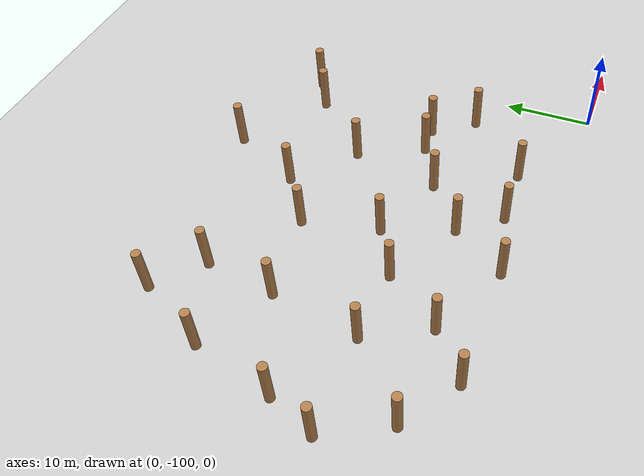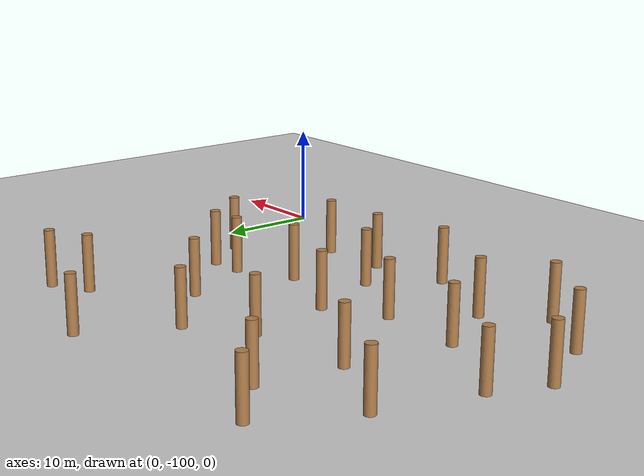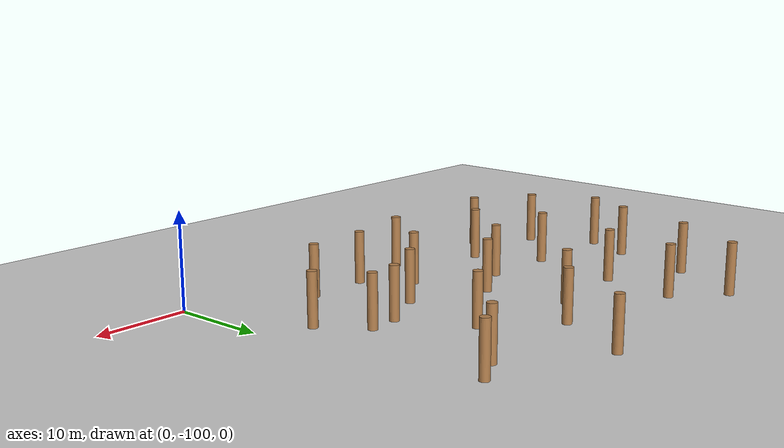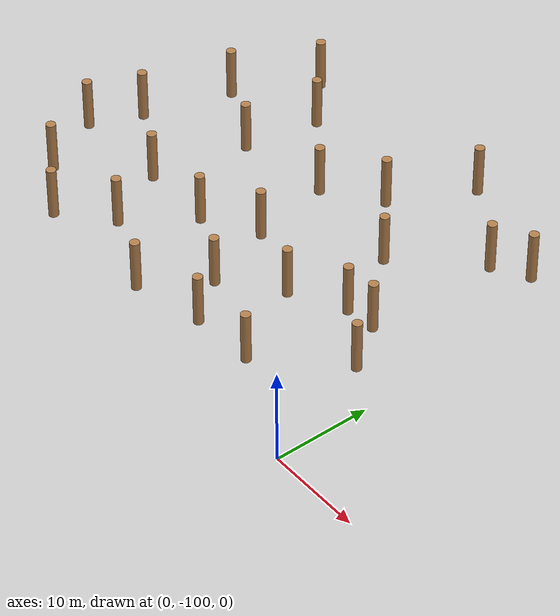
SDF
<sdf version="1.6">
 <world name="default">
  <model name="ground_plane">
   <static>1</static>
   <link name="link">
    <collision name="collision">
     <geometry><plane><normal>0 0 1</normal><size>100 100</size></plane></geometry>
     <surface><friction><ode><mu>100</mu><mu2>50</mu2></ode></friction></surface>
    </collision>
    <visual name="visual">
     <cast_shadows>0</cast_shadows>
     <geometry><plane><normal>0 0 1</normal><size>100 100</size></plane></geometry>
     <material>
      <script><uri>file://media/materials/scripts/gazebo.material</uri><name>Gazebo/Grey</name></script>
     </material>
    </visual>
   </link>
  </model>
  <model name="WoodPillars_8">
   <link name="link_clone_35">
    <inertial>
     <mass>1</mass>
     <inertia><ixx>0.145833</ixx><ixy>0</ixy><ixz>0</ixz><iyy>0.145833</iyy><iyz>0</iyz><izz>0.125</izz></inertia>
    </inertial>
    <pose>-5.14728 3.10998 -0 0 -0 -0.001289</pose>
    <visual name="visual">
     <geometry><cylinder><radius>0.5</radius><length>5.50507</length></cylinder></geometry>
     <material>
      <script><name>Gazebo/Wood</name><uri>file://media/materials/scripts/gazebo.material</uri></script>
      <shader type="pixel"/>
     </material>
    </visual>
    <collision name="collision">
     <geometry><cylinder><radius>0.5</radius><length>5.50507</length></cylinder></geometry>
     <surface>
      <friction>
       <ode><mu>1</mu><mu2>1</mu2><fdir1>0 0 0</fdir1><slip1>0</slip1><slip2>0</slip2></ode>
       <torsional>
        <coefficient>1</coefficient>
        <patch_radius>0</patch_radius>
        <surface_radius>0</surface_radius>
        <use_patch_radius>1</use_patch_radius>
        <ode><slip>0</slip></ode>
       </torsional>
      </friction>
      <bounce><restitution_coefficient>0</restitution_coefficient><threshold>1e+06</threshold></bounce>
      <contact>
       <collide_without_contact>0</collide_without_contact>
       <collide_without_contact_bitmask>1</collide_without_contact_bitmask>
       <collide_bitmask>1</collide_bitmask>
       <ode>
        <soft_cfm>0</soft_cfm>
        <soft_erp>0.2</soft_erp>
        <kp>1e+13</kp>
        <kd>1</kd>
        <max_vel>0.01</max_vel>
        <min_depth>0</min_depth>
       </ode>
       <bullet>
        <split_impulse>1</split_impulse>
        <split_impulse_penetration_threshold>-0.01</split_impulse_penetration_threshold>
        <soft_cfm>0</soft_cfm>
        <soft_erp>0.2</soft_erp>
        <kp>1e+13</kp>
        <kd>1</kd>
       </bullet>
      </contact>
     </surface>
    </collision>
   </link>
   <static>0</static>
   <pose>1.10151 -69.5089 2.75253 0 -0 0.001606</pose>
  </model>
  <model name="WoodPillars_12">
   <link name="link">
    <inertial>
     <mass>1</mass>
     <inertia><ixx>0.145833</ixx><ixy>0</ixy><ixz>0</ixz><iyy>0.145833</iyy><iyz>0</iyz><izz>0.125</izz></inertia>
    </inertial>
    <visual name="visual">
     <geometry><cylinder><radius>0.5</radius><length>5.50507</length></cylinder></geometry>
     <material>
      <script><name>Gazebo/Wood</name><uri>file://media/materials/scripts/gazebo.material</uri></script>
     </material>
    </visual>
    <collision name="collision">
     <geometry><cylinder><radius>0.5</radius><length>5.50507</length></cylinder></geometry>
     <surface>
      <friction>
       <ode><mu>1</mu><mu2>1</mu2><fdir1>0 0 0</fdir1><slip1>0</slip1><slip2>0</slip2></ode>
       <torsional>
        <coefficient>1</coefficient>
        <patch_radius>0</patch_radius>
        <surface_radius>0</surface_radius>
        <use_patch_radius>1</use_patch_radius>
        <ode><slip>0</slip></ode>
       </torsional>
      </friction>
      <bounce><restitution_coefficient>0</restitution_coefficient><threshold>1e+06</threshold></bounce>
      <contact>
       <collide_without_contact>0</collide_without_contact>
       <collide_without_contact_bitmask>1</collide_without_contact_bitmask>
       <collide_bitmask>1</collide_bitmask>
       <ode>
        <soft_cfm>0</soft_cfm>
        <soft_erp>0.2</soft_erp>
        <kp>1e+13</kp>
        <kd>1</kd>
        <max_vel>0.01</max_vel>
        <min_depth>0</min_depth>
       </ode>
       <bullet>
        <split_impulse>1</split_impulse>
        <split_impulse_penetration_threshold>-0.01</split_impulse_penetration_threshold>
        <soft_cfm>0</soft_cfm>
        <soft_erp>0.2</soft_erp>
        <kp>1e+13</kp>
        <kd>1</kd>
       </bullet>
      </contact>
     </surface>
    </collision>
   </link>
   <link name="link_clone">
    <inertial>
     <mass>1</mass>
     <inertia><ixx>0.145833</ixx><ixy>0</ixy><ixz>0</ixz><iyy>0.145833</iyy><iyz>0</iyz><izz>0.125</izz></inertia>
    </inertial>
    <pose>17.6954 -2.91348 -2e-06 0 -0 -0.001289</pose>
    <visual name="visual">
     <geometry><cylinder><radius>0.5</radius><length>5.50507</length></cylinder></geometry>
     <material>
      <script><name>Gazebo/Wood</name><uri>file://media/materials/scripts/gazebo.material</uri></script>
      <shader type="pixel"/>
     </material>
    </visual>
    <collision name="collision">
     <geometry><cylinder><radius>0.5</radius><length>5.50507</length></cylinder></geometry>
     <surface>
      <friction>
       <ode><mu>1</mu><mu2>1</mu2><fdir1>0 0 0</fdir1><slip1>0</slip1><slip2>0</slip2></ode>
       <torsional>
        <coefficient>1</coefficient>
        <patch_radius>0</patch_radius>
        <surface_radius>0</surface_radius>
        <use_patch_radius>1</use_patch_radius>
        <ode><slip>0</slip></ode>
       </torsional>
      </friction>
      <bounce><restitution_coefficient>0</restitution_coefficient><threshold>1e+06</threshold></bounce>
      <contact>
       <collide_without_contact>0</collide_without_contact>
       <collide_without_contact_bitmask>1</collide_without_contact_bitmask>
       <collide_bitmask>1</collide_bitmask>
       <ode>
        <soft_cfm>0</soft_cfm>
        <soft_erp>0.2</soft_erp>
        <kp>1e+13</kp>
        <kd>1</kd>
        <max_vel>0.01</max_vel>
        <min_depth>0</min_depth>
       </ode>
       <bullet>
        <split_impulse>1</split_impulse>
        <split_impulse_penetration_threshold>-0.01</split_impulse_penetration_threshold>
        <soft_cfm>0</soft_cfm>
        <soft_erp>0.2</soft_erp>
        <kp>1e+13</kp>
        <kd>1</kd>
       </bullet>
      </contact>
     </surface>
    </collision>
   </link>
   <link name="link_clone_12">
    <inertial>
     <mass>1</mass>
     <inertia><ixx>0.145833</ixx><ixy>0</ixy><ixz>0</ixz><iyy>0.145833</iyy><iyz>0</iyz><izz>0.125</izz></inertia>
    </inertial>
    <pose>36.6063 2.3916 -3e-06 0 -0 -0.001289</pose>
    <visual name="visual">
     <geometry><cylinder><radius>0.5</radius><length>5.50507</length></cylinder></geometry>
     <material>
      <script><name>Gazebo/Wood</name><uri>file://media/materials/scripts/gazebo.material</uri></script>
      <shader type="pixel"/>
     </material>
    </visual>
    <collision name="collision">
     <geometry><cylinder><radius>0.5</radius><length>5.50507</length></cylinder></geometry>
     <surface>
      <friction>
       <ode><mu>1</mu><mu2>1</mu2><fdir1>0 0 0</fdir1><slip1>0</slip1><slip2>0</slip2></ode>
       <torsional>
        <coefficient>1</coefficient>
        <patch_radius>0</patch_radius>
        <surface_radius>0</surface_radius>
        <use_patch_radius>1</use_patch_radius>
        <ode><slip>0</slip></ode>
       </torsional>
      </friction>
      <bounce><restitution_coefficient>0</restitution_coefficient><threshold>1e+06</threshold></bounce>
      <contact>
       <collide_without_contact>0</collide_without_contact>
       <collide_without_contact_bitmask>1</collide_without_contact_bitmask>
       <collide_bitmask>1</collide_bitmask>
       <ode>
        <soft_cfm>0</soft_cfm>
        <soft_erp>0.2</soft_erp>
        <kp>1e+13</kp>
        <kd>1</kd>
        <max_vel>0.01</max_vel>
        <min_depth>0</min_depth>
       </ode>
       <bullet>
        <split_impulse>1</split_impulse>
        <split_impulse_penetration_threshold>-0.01</split_impulse_penetration_threshold>
        <soft_cfm>0</soft_cfm>
        <soft_erp>0.2</soft_erp>
        <kp>1e+13</kp>
        <kd>1</kd>
       </bullet>
      </contact>
     </surface>
    </collision>
   </link>
   <link name="link_clone_13">
    <inertial>
     <mass>1</mass>
     <inertia><ixx>0.145833</ixx><ixy>0</ixy><ixz>0</ixz><iyy>0.145833</iyy><iyz>0</iyz><izz>0.125</izz></inertia>
    </inertial>
    <pose>32.2715 -23.3528 -3e-06 0 -0 -0.001289</pose>
    <visual name="visual">
     <geometry><cylinder><radius>0.5</radius><length>5.50507</length></cylinder></geometry>
     <material>
      <script><name>Gazebo/Wood</name><uri>file://media/materials/scripts/gazebo.material</uri></script>
      <shader type="pixel"/>
     </material>
    </visual>
    <collision name="collision">
     <geometry><cylinder><radius>0.5</radius><length>5.50507</length></cylinder></geometry>
     <surface>
      <friction>
       <ode><mu>1</mu><mu2>1</mu2><fdir1>0 0 0</fdir1><slip1>0</slip1><slip2>0</slip2></ode>
       <torsional>
        <coefficient>1</coefficient>
        <patch_radius>0</patch_radius>
        <surface_radius>0</surface_radius>
        <use_patch_radius>1</use_patch_radius>
        <ode><slip>0</slip></ode>
       </torsional>
      </friction>
      <bounce><restitution_coefficient>0</restitution_coefficient><threshold>1e+06</threshold></bounce>
      <contact>
       <collide_without_contact>0</collide_without_contact>
       <collide_without_contact_bitmask>1</collide_without_contact_bitmask>
       <collide_bitmask>1</collide_bitmask>
       <ode>
        <soft_cfm>0</soft_cfm>
        <soft_erp>0.2</soft_erp>
        <kp>1e+13</kp>
        <kd>1</kd>
        <max_vel>0.01</max_vel>
        <min_depth>0</min_depth>
       </ode>
       <bullet>
        <split_impulse>1</split_impulse>
        <split_impulse_penetration_threshold>-0.01</split_impulse_penetration_threshold>
        <soft_cfm>0</soft_cfm>
        <soft_erp>0.2</soft_erp>
        <kp>1e+13</kp>
        <kd>1</kd>
       </bullet>
      </contact>
     </surface>
    </collision>
   </link>
   <link name="link_clone_14">
    <inertial>
     <mass>1</mass>
     <inertia><ixx>0.145833</ixx><ixy>0</ixy><ixz>0</ixz><iyy>0.145833</iyy><iyz>0</iyz><izz>0.125</izz></inertia>
    </inertial>
    <pose>9.31461 -20.9997 -1e-06 0 -0 -0.001289</pose>
    <visual name="visual">
     <geometry><cylinder><radius>0.5</radius><length>5.50507</length></cylinder></geometry>
     <material>
      <script><name>Gazebo/Wood</name><uri>file://media/materials/scripts/gazebo.material</uri></script>
      <shader type="pixel"/>
     </material>
    </visual>
    <collision name="collision">
     <geometry><cylinder><radius>0.5</radius><length>5.50507</length></cylinder></geometry>
     <surface>
      <friction>
       <ode><mu>1</mu><mu2>1</mu2><fdir1>0 0 0</fdir1><slip1>0</slip1><slip2>0</slip2></ode>
       <torsional>
        <coefficient>1</coefficient>
        <patch_radius>0</patch_radius>
        <surface_radius>0</surface_radius>
        <use_patch_radius>1</use_patch_radius>
        <ode><slip>0</slip></ode>
       </torsional>
      </friction>
      <bounce><restitution_coefficient>0</restitution_coefficient><threshold>1e+06</threshold></bounce>
      <contact>
       <collide_without_contact>0</collide_without_contact>
       <collide_without_contact_bitmask>1</collide_without_contact_bitmask>
       <collide_bitmask>1</collide_bitmask>
       <ode>
        <soft_cfm>0</soft_cfm>
        <soft_erp>0.2</soft_erp>
        <kp>1e+13</kp>
        <kd>1</kd>
        <max_vel>0.01</max_vel>
        <min_depth>0</min_depth>
       </ode>
       <bullet>
        <split_impulse>1</split_impulse>
        <split_impulse_penetration_threshold>-0.01</split_impulse_penetration_threshold>
        <soft_cfm>0</soft_cfm>
        <soft_erp>0.2</soft_erp>
        <kp>1e+13</kp>
        <kd>1</kd>
       </bullet>
      </contact>
     </surface>
    </collision>
   </link>
   <link name="link_clone_15">
    <inertial>
     <mass>1</mass>
     <inertia><ixx>0.145833</ixx><ixy>0</ixy><ixz>0</ixz><iyy>0.145833</iyy><iyz>0</iyz><izz>0.125</izz></inertia>
    </inertial>
    <pose>17.9894 -25.1945 -2e-06 0 -0 -0.001289</pose>
    <visual name="visual">
     <geometry><cylinder><radius>0.5</radius><length>5.50507</length></cylinder></geometry>
     <material>
      <script><name>Gazebo/Wood</name><uri>file://media/materials/scripts/gazebo.material</uri></script>
      <shader type="pixel"/>
     </material>
    </visual>
    <collision name="collision">
     <geometry><cylinder><radius>0.5</radius><length>5.50507</length></cylinder></geometry>
     <surface>
      <friction>
       <ode><mu>1</mu><mu2>1</mu2><fdir1>0 0 0</fdir1><slip1>0</slip1><slip2>0</slip2></ode>
       <torsional>
        <coefficient>1</coefficient>
        <patch_radius>0</patch_radius>
        <surface_radius>0</surface_radius>
        <use_patch_radius>1</use_patch_radius>
        <ode><slip>0</slip></ode>
       </torsional>
      </friction>
      <bounce><restitution_coefficient>0</restitution_coefficient><threshold>1e+06</threshold></bounce>
      <contact>
       <collide_without_contact>0</collide_without_contact>
       <collide_without_contact_bitmask>1</collide_without_contact_bitmask>
       <collide_bitmask>1</collide_bitmask>
       <ode>
        <soft_cfm>0</soft_cfm>
        <soft_erp>0.2</soft_erp>
        <kp>1e+13</kp>
        <kd>1</kd>
        <max_vel>0.01</max_vel>
        <min_depth>0</min_depth>
       </ode>
       <bullet>
        <split_impulse>1</split_impulse>
        <split_impulse_penetration_threshold>-0.01</split_impulse_penetration_threshold>
        <soft_cfm>0</soft_cfm>
        <soft_erp>0.2</soft_erp>
        <kp>1e+13</kp>
        <kd>1</kd>
       </bullet>
      </contact>
     </surface>
    </collision>
   </link>
   <link name="link_clone_16">
    <inertial>
     <mass>1</mass>
     <inertia><ixx>0.145833</ixx><ixy>0</ixy><ixz>0</ixz><iyy>0.145833</iyy><iyz>0</iyz><izz>0.125</izz></inertia>
    </inertial>
    <pose>32.9662 -11.9429 -3e-06 0 -0 -0.001289</pose>
    <visual name="visual">
     <geometry><cylinder><radius>0.5</radius><length>5.50507</length></cylinder></geometry>
     <material>
      <script><name>Gazebo/Wood</name><uri>file://media/materials/scripts/gazebo.material</uri></script>
      <shader type="pixel"/>
     </material>
    </visual>
    <collision name="collision">
     <geometry><cylinder><radius>0.5</radius><length>5.50507</length></cylinder></geometry>
     <surface>
      <friction>
       <ode><mu>1</mu><mu2>1</mu2><fdir1>0 0 0</fdir1><slip1>0</slip1><slip2>0</slip2></ode>
       <torsional>
        <coefficient>1</coefficient>
        <patch_radius>0</patch_radius>
        <surface_radius>0</surface_radius>
        <use_patch_radius>1</use_patch_radius>
        <ode><slip>0</slip></ode>
       </torsional>
      </friction>
      <bounce><restitution_coefficient>0</restitution_coefficient><threshold>1e+06</threshold></bounce>
      <contact>
       <collide_without_contact>0</collide_without_contact>
       <collide_without_contact_bitmask>1</collide_without_contact_bitmask>
       <collide_bitmask>1</collide_bitmask>
       <ode>
        <soft_cfm>0</soft_cfm>
        <soft_erp>0.2</soft_erp>
        <kp>1e+13</kp>
        <kd>1</kd>
        <max_vel>0.01</max_vel>
        <min_depth>0</min_depth>
       </ode>
       <bullet>
        <split_impulse>1</split_impulse>
        <split_impulse_penetration_threshold>-0.01</split_impulse_penetration_threshold>
        <soft_cfm>0</soft_cfm>
        <soft_erp>0.2</soft_erp>
        <kp>1e+13</kp>
        <kd>1</kd>
       </bullet>
      </contact>
     </surface>
    </collision>
   </link>
   <link name="link_clone_17">
    <inertial>
     <mass>1</mass>
     <inertia><ixx>0.145833</ixx><ixy>0</ixy><ixz>0</ixz><iyy>0.145833</iyy><iyz>0</iyz><izz>0.125</izz></inertia>
    </inertial>
    <pose>19.3784 -11.4604 -2e-06 0 -0 -0.001289</pose>
    <visual name="visual">
     <geometry><cylinder><radius>0.5</radius><length>5.50507</length></cylinder></geometry>
     <material>
      <script><name>Gazebo/Wood</name><uri>file://media/materials/scripts/gazebo.material</uri></script>
      <shader type="pixel"/>
     </material>
    </visual>
    <collision name="collision">
     <geometry><cylinder><radius>0.5</radius><length>5.50507</length></cylinder></geometry>
     <surface>
      <friction>
       <ode><mu>1</mu><mu2>1</mu2><fdir1>0 0 0</fdir1><slip1>0</slip1><slip2>0</slip2></ode>
       <torsional>
        <coefficient>1</coefficient>
        <patch_radius>0</patch_radius>
        <surface_radius>0</surface_radius>
        <use_patch_radius>1</use_patch_radius>
        <ode><slip>0</slip></ode>
       </torsional>
      </friction>
      <bounce><restitution_coefficient>0</restitution_coefficient><threshold>1e+06</threshold></bounce>
      <contact>
       <collide_without_contact>0</collide_without_contact>
       <collide_without_contact_bitmask>1</collide_without_contact_bitmask>
       <collide_bitmask>1</collide_bitmask>
       <ode>
        <soft_cfm>0</soft_cfm>
        <soft_erp>0.2</soft_erp>
        <kp>1e+13</kp>
        <kd>1</kd>
        <max_vel>0.01</max_vel>
        <min_depth>0</min_depth>
       </ode>
       <bullet>
        <split_impulse>1</split_impulse>
        <split_impulse_penetration_threshold>-0.01</split_impulse_penetration_threshold>
        <soft_cfm>0</soft_cfm>
        <soft_erp>0.2</soft_erp>
        <kp>1e+13</kp>
        <kd>1</kd>
       </bullet>
      </contact>
     </surface>
    </collision>
   </link>
   <link name="link_clone_18">
    <inertial>
     <mass>1</mass>
     <inertia><ixx>0.145833</ixx><ixy>0</ixy><ixz>0</ixz><iyy>0.145833</iyy><iyz>0</iyz><izz>0.125</izz></inertia>
    </inertial>
    <pose>9.1573 3.67739 -1e-06 0 -0 -0.001289</pose>
    <visual name="visual">
     <geometry><cylinder><radius>0.5</radius><length>5.50507</length></cylinder></geometry>
     <material>
      <script><name>Gazebo/Wood</name><uri>file://media/materials/scripts/gazebo.material</uri></script>
      <shader type="pixel"/>
     </material>
    </visual>
    <collision name="collision">
     <geometry><cylinder><radius>0.5</radius><length>5.50507</length></cylinder></geometry>
     <surface>
      <friction>
       <ode><mu>1</mu><mu2>1</mu2><fdir1>0 0 0</fdir1><slip1>0</slip1><slip2>0</slip2></ode>
       <torsional>
        <coefficient>1</coefficient>
        <patch_radius>0</patch_radius>
        <surface_radius>0</surface_radius>
        <use_patch_radius>1</use_patch_radius>
        <ode><slip>0</slip></ode>
       </torsional>
      </friction>
      <bounce><restitution_coefficient>0</restitution_coefficient><threshold>1e+06</threshold></bounce>
      <contact>
       <collide_without_contact>0</collide_without_contact>
       <collide_without_contact_bitmask>1</collide_without_contact_bitmask>
       <collide_bitmask>1</collide_bitmask>
       <ode>
        <soft_cfm>0</soft_cfm>
        <soft_erp>0.2</soft_erp>
        <kp>1e+13</kp>
        <kd>1</kd>
        <max_vel>0.01</max_vel>
        <min_depth>0</min_depth>
       </ode>
       <bullet>
        <split_impulse>1</split_impulse>
        <split_impulse_penetration_threshold>-0.01</split_impulse_penetration_threshold>
        <soft_cfm>0</soft_cfm>
        <soft_erp>0.2</soft_erp>
        <kp>1e+13</kp>
        <kd>1</kd>
       </bullet>
      </contact>
     </surface>
    </collision>
   </link>
   <link name="link_clone_20">
    <inertial>
     <mass>1</mass>
     <inertia><ixx>0.145833</ixx><ixy>0</ixy><ixz>0</ixz><iyy>0.145833</iyy><iyz>0</iyz><izz>0.125</izz></inertia>
    </inertial>
    <pose>-2.64423 -9.12396 -0 0 -0 -0.001289</pose>
    <visual name="visual">
     <geometry><cylinder><radius>0.5</radius><length>5.50507</length></cylinder></geometry>
     <material>
      <script><name>Gazebo/Wood</name><uri>file://media/materials/scripts/gazebo.material</uri></script>
      <shader type="pixel"/>
     </material>
    </visual>
    <collision name="collision">
     <geometry><cylinder><radius>0.5</radius><length>5.50507</length></cylinder></geometry>
     <surface>
      <friction>
       <ode><mu>1</mu><mu2>1</mu2><fdir1>0 0 0</fdir1><slip1>0</slip1><slip2>0</slip2></ode>
       <torsional>
        <coefficient>1</coefficient>
        <patch_radius>0</patch_radius>
        <surface_radius>0</surface_radius>
        <use_patch_radius>1</use_patch_radius>
        <ode><slip>0</slip></ode>
       </torsional>
      </friction>
      <bounce><restitution_coefficient>0</restitution_coefficient><threshold>1e+06</threshold></bounce>
      <contact>
       <collide_without_contact>0</collide_without_contact>
       <collide_without_contact_bitmask>1</collide_without_contact_bitmask>
       <collide_bitmask>1</collide_bitmask>
       <ode>
        <soft_cfm>0</soft_cfm>
        <soft_erp>0.2</soft_erp>
        <kp>1e+13</kp>
        <kd>1</kd>
        <max_vel>0.01</max_vel>
        <min_depth>0</min_depth>
       </ode>
       <bullet>
        <split_impulse>1</split_impulse>
        <split_impulse_penetration_threshold>-0.01</split_impulse_penetration_threshold>
        <soft_cfm>0</soft_cfm>
        <soft_erp>0.2</soft_erp>
        <kp>1e+13</kp>
        <kd>1</kd>
       </bullet>
      </contact>
     </surface>
    </collision>
   </link>
   <link name="link_clone_22">
    <inertial>
     <mass>1</mass>
     <inertia><ixx>0.145833</ixx><ixy>0</ixy><ixz>0</ixz><iyy>0.145833</iyy><iyz>0</iyz><izz>0.125</izz></inertia>
    </inertial>
    <pose>27.313 9.05961 -2e-06 0 -0 -0.001289</pose>
    <visual name="visual">
     <geometry><cylinder><radius>0.5</radius><length>5.50507</length></cylinder></geometry>
     <material>
      <script><name>Gazebo/Wood</name><uri>file://media/materials/scripts/gazebo.material</uri></script>
      <shader type="pixel"/>
     </material>
    </visual>
    <collision name="collision">
     <geometry><cylinder><radius>0.5</radius><length>5.50507</length></cylinder></geometry>
     <surface>
      <friction>
       <ode><mu>1</mu><mu2>1</mu2><fdir1>0 0 0</fdir1><slip1>0</slip1><slip2>0</slip2></ode>
       <torsional>
        <coefficient>1</coefficient>
        <patch_radius>0</patch_radius>
        <surface_radius>0</surface_radius>
        <use_patch_radius>1</use_patch_radius>
        <ode><slip>0</slip></ode>
       </torsional>
      </friction>
      <bounce><restitution_coefficient>0</restitution_coefficient><threshold>1e+06</threshold></bounce>
      <contact>
       <collide_without_contact>0</collide_without_contact>
       <collide_without_contact_bitmask>1</collide_without_contact_bitmask>
       <collide_bitmask>1</collide_bitmask>
       <ode>
        <soft_cfm>0</soft_cfm>
        <soft_erp>0.2</soft_erp>
        <kp>1e+13</kp>
        <kd>1</kd>
        <max_vel>0.01</max_vel>
        <min_depth>0</min_depth>
       </ode>
       <bullet>
        <split_impulse>1</split_impulse>
        <split_impulse_penetration_threshold>-0.01</split_impulse_penetration_threshold>
        <soft_cfm>0</soft_cfm>
        <soft_erp>0.2</soft_erp>
        <kp>1e+13</kp>
        <kd>1</kd>
       </bullet>
      </contact>
     </surface>
    </collision>
   </link>
   <link name="link_clone_23">
    <inertial>
     <mass>1</mass>
     <inertia><ixx>0.145833</ixx><ixy>0</ixy><ixz>0</ixz><iyy>0.145833</iyy><iyz>0</iyz><izz>0.125</izz></inertia>
    </inertial>
    <pose>29.5176 -4.71623 -3e-06 0 -0 -0.001289</pose>
    <visual name="visual">
     <geometry><cylinder><radius>0.5</radius><length>5.50507</length></cylinder></geometry>
     <material>
      <script><name>Gazebo/Wood</name><uri>file://media/materials/scripts/gazebo.material</uri></script>
      <shader type="pixel"/>
     </material>
    </visual>
    <collision name="collision">
     <geometry><cylinder><radius>0.5</radius><length>5.50507</length></cylinder></geometry>
     <surface>
      <friction>
       <ode><mu>1</mu><mu2>1</mu2><fdir1>0 0 0</fdir1><slip1>0</slip1><slip2>0</slip2></ode>
       <torsional>
        <coefficient>1</coefficient>
        <patch_radius>0</patch_radius>
        <surface_radius>0</surface_radius>
        <use_patch_radius>1</use_patch_radius>
        <ode><slip>0</slip></ode>
       </torsional>
      </friction>
      <bounce><restitution_coefficient>0</restitution_coefficient><threshold>1e+06</threshold></bounce>
      <contact>
       <collide_without_contact>0</collide_without_contact>
       <collide_without_contact_bitmask>1</collide_without_contact_bitmask>
       <collide_bitmask>1</collide_bitmask>
       <ode>
        <soft_cfm>0</soft_cfm>
        <soft_erp>0.2</soft_erp>
        <kp>1e+13</kp>
        <kd>1</kd>
        <max_vel>0.01</max_vel>
        <min_depth>0</min_depth>
       </ode>
       <bullet>
        <split_impulse>1</split_impulse>
        <split_impulse_penetration_threshold>-0.01</split_impulse_penetration_threshold>
        <soft_cfm>0</soft_cfm>
        <soft_erp>0.2</soft_erp>
        <kp>1e+13</kp>
        <kd>1</kd>
       </bullet>
      </contact>
     </surface>
    </collision>
   </link>
   <link name="link_clone_24">
    <inertial>
     <mass>1</mass>
     <inertia><ixx>0.145833</ixx><ixy>0</ixy><ixz>0</ixz><iyy>0.145833</iyy><iyz>0</iyz><izz>0.125</izz></inertia>
    </inertial>
    <pose>7.84688 -4.26113 -1e-06 0 -0 -0.001289</pose>
    <visual name="visual">
     <geometry><cylinder><radius>0.5</radius><length>5.50507</length></cylinder></geometry>
     <material>
      <script><name>Gazebo/Wood</name><uri>file://media/materials/scripts/gazebo.material</uri></script>
      <shader type="pixel"/>
     </material>
    </visual>
    <collision name="collision">
     <geometry><cylinder><radius>0.5</radius><length>5.50507</length></cylinder></geometry>
     <surface>
      <friction>
       <ode><mu>1</mu><mu2>1</mu2><fdir1>0 0 0</fdir1><slip1>0</slip1><slip2>0</slip2></ode>
       <torsional>
        <coefficient>1</coefficient>
        <patch_radius>0</patch_radius>
        <surface_radius>0</surface_radius>
        <use_patch_radius>1</use_patch_radius>
        <ode><slip>0</slip></ode>
       </torsional>
      </friction>
      <bounce><restitution_coefficient>0</restitution_coefficient><threshold>1e+06</threshold></bounce>
      <contact>
       <collide_without_contact>0</collide_without_contact>
       <collide_without_contact_bitmask>1</collide_without_contact_bitmask>
       <collide_bitmask>1</collide_bitmask>
       <ode>
        <soft_cfm>0</soft_cfm>
        <soft_erp>0.2</soft_erp>
        <kp>1e+13</kp>
        <kd>1</kd>
        <max_vel>0.01</max_vel>
        <min_depth>0</min_depth>
       </ode>
       <bullet>
        <split_impulse>1</split_impulse>
        <split_impulse_penetration_threshold>-0.01</split_impulse_penetration_threshold>
        <soft_cfm>0</soft_cfm>
        <soft_erp>0.2</soft_erp>
        <kp>1e+13</kp>
        <kd>1</kd>
       </bullet>
      </contact>
     </surface>
    </collision>
   </link>
   <link name="link_clone_26">
    <inertial>
     <mass>1</mass>
     <inertia><ixx>0.145833</ixx><ixy>0</ixy><ixz>0</ixz><iyy>0.145833</iyy><iyz>0</iyz><izz>0.125</izz></inertia>
    </inertial>
    <pose>13.9187 -14.5508 -1e-06 0 -0 -0.001289</pose>
    <visual name="visual">
     <geometry><cylinder><radius>0.5</radius><length>5.50507</length></cylinder></geometry>
     <material>
      <script><name>Gazebo/Wood</name><uri>file://media/materials/scripts/gazebo.material</uri></script>
      <shader type="pixel"/>
     </material>
    </visual>
    <collision name="collision">
     <geometry><cylinder><radius>0.5</radius><length>5.50507</length></cylinder></geometry>
     <surface>
      <friction>
       <ode><mu>1</mu><mu2>1</mu2><fdir1>0 0 0</fdir1><slip1>0</slip1><slip2>0</slip2></ode>
       <torsional>
        <coefficient>1</coefficient>
        <patch_radius>0</patch_radius>
        <surface_radius>0</surface_radius>
        <use_patch_radius>1</use_patch_radius>
        <ode><slip>0</slip></ode>
       </torsional>
      </friction>
      <bounce><restitution_coefficient>0</restitution_coefficient><threshold>1e+06</threshold></bounce>
      <contact>
       <collide_without_contact>0</collide_without_contact>
       <collide_without_contact_bitmask>1</collide_without_contact_bitmask>
       <collide_bitmask>1</collide_bitmask>
       <ode>
        <soft_cfm>0</soft_cfm>
        <soft_erp>0.2</soft_erp>
        <kp>1e+13</kp>
        <kd>1</kd>
        <max_vel>0.01</max_vel>
        <min_depth>0</min_depth>
       </ode>
       <bullet>
        <split_impulse>1</split_impulse>
        <split_impulse_penetration_threshold>-0.01</split_impulse_penetration_threshold>
        <soft_cfm>0</soft_cfm>
        <soft_erp>0.2</soft_erp>
        <kp>1e+13</kp>
        <kd>1</kd>
       </bullet>
      </contact>
     </surface>
    </collision>
   </link>
   <link name="link_clone_27">
    <inertial>
     <mass>1</mass>
     <inertia><ixx>0.145833</ixx><ixy>0</ixy><ixz>0</ixz><iyy>0.145833</iyy><iyz>0</iyz><izz>0.125</izz></inertia>
    </inertial>
    <pose>4.38632 -25.0605 -1e-06 0 -0 -0.001289</pose>
    <visual name="visual">
     <geometry><cylinder><radius>0.5</radius><length>5.50507</length></cylinder></geometry>
     <material>
      <script><name>Gazebo/Wood</name><uri>file://media/materials/scripts/gazebo.material</uri></script>
      <shader type="pixel"/>
     </material>
    </visual>
    <collision name="collision">
     <geometry><cylinder><radius>0.5</radius><length>5.50507</length></cylinder></geometry>
     <surface>
      <friction>
       <ode><mu>1</mu><mu2>1</mu2><fdir1>0 0 0</fdir1><slip1>0</slip1><slip2>0</slip2></ode>
       <torsional>
        <coefficient>1</coefficient>
        <patch_radius>0</patch_radius>
        <surface_radius>0</surface_radius>
        <use_patch_radius>1</use_patch_radius>
        <ode><slip>0</slip></ode>
       </torsional>
      </friction>
      <bounce><restitution_coefficient>0</restitution_coefficient><threshold>1e+06</threshold></bounce>
      <contact>
       <collide_without_contact>0</collide_without_contact>
       <collide_without_contact_bitmask>1</collide_without_contact_bitmask>
       <collide_bitmask>1</collide_bitmask>
       <ode>
        <soft_cfm>0</soft_cfm>
        <soft_erp>0.2</soft_erp>
        <kp>1e+13</kp>
        <kd>1</kd>
        <max_vel>0.01</max_vel>
        <min_depth>0</min_depth>
       </ode>
       <bullet>
        <split_impulse>1</split_impulse>
        <split_impulse_penetration_threshold>-0.01</split_impulse_penetration_threshold>
        <soft_cfm>0</soft_cfm>
        <soft_erp>0.2</soft_erp>
        <kp>1e+13</kp>
        <kd>1</kd>
       </bullet>
      </contact>
     </surface>
    </collision>
   </link>
   <link name="link_clone_28">
    <inertial>
     <mass>1</mass>
     <inertia><ixx>0.145833</ixx><ixy>0</ixy><ixz>0</ixz><iyy>0.145833</iyy><iyz>0</iyz><izz>0.125</izz></inertia>
    </inertial>
    <pose>27.5353 -14.766 -3e-06 0 -0 -0.001289</pose>
    <visual name="visual">
     <geometry><cylinder><radius>0.5</radius><length>5.50507</length></cylinder></geometry>
     <material>
      <script><name>Gazebo/Wood</name><uri>file://media/materials/scripts/gazebo.material</uri></script>
      <shader type="pixel"/>
     </material>
    </visual>
    <collision name="collision">
     <geometry><cylinder><radius>0.5</radius><length>5.50507</length></cylinder></geometry>
     <surface>
      <friction>
       <ode><mu>1</mu><mu2>1</mu2><fdir1>0 0 0</fdir1><slip1>0</slip1><slip2>0</slip2></ode>
       <torsional>
        <coefficient>1</coefficient>
        <patch_radius>0</patch_radius>
        <surface_radius>0</surface_radius>
        <use_patch_radius>1</use_patch_radius>
        <ode><slip>0</slip></ode>
       </torsional>
      </friction>
      <bounce><restitution_coefficient>0</restitution_coefficient><threshold>1e+06</threshold></bounce>
      <contact>
       <collide_without_contact>0</collide_without_contact>
       <collide_without_contact_bitmask>1</collide_without_contact_bitmask>
       <collide_bitmask>1</collide_bitmask>
       <ode>
        <soft_cfm>0</soft_cfm>
        <soft_erp>0.2</soft_erp>
        <kp>1e+13</kp>
        <kd>1</kd>
        <max_vel>0.01</max_vel>
        <min_depth>0</min_depth>
       </ode>
       <bullet>
        <split_impulse>1</split_impulse>
        <split_impulse_penetration_threshold>-0.01</split_impulse_penetration_threshold>
        <soft_cfm>0</soft_cfm>
        <soft_erp>0.2</soft_erp>
        <kp>1e+13</kp>
        <kd>1</kd>
       </bullet>
      </contact>
     </surface>
    </collision>
   </link>
   <link name="link_clone_29">
    <inertial>
     <mass>1</mass>
     <inertia><ixx>0.145833</ixx><ixy>0</ixy><ixz>0</ixz><iyy>0.145833</iyy><iyz>0</iyz><izz>0.125</izz></inertia>
    </inertial>
    <pose>39.4401 -16.2696 -4e-06 0 -0 -0.001289</pose>
    <visual name="visual">
     <geometry><cylinder><radius>0.5</radius><length>5.50507</length></cylinder></geometry>
     <material>
      <script><name>Gazebo/Wood</name><uri>file://media/materials/scripts/gazebo.material</uri></script>
      <shader type="pixel"/>
     </material>
    </visual>
    <collision name="collision">
     <geometry><cylinder><radius>0.5</radius><length>5.50507</length></cylinder></geometry>
     <surface>
      <friction>
       <ode><mu>1</mu><mu2>1</mu2><fdir1>0 0 0</fdir1><slip1>0</slip1><slip2>0</slip2></ode>
       <torsional>
        <coefficient>1</coefficient>
        <patch_radius>0</patch_radius>
        <surface_radius>0</surface_radius>
        <use_patch_radius>1</use_patch_radius>
        <ode><slip>0</slip></ode>
       </torsional>
      </friction>
      <bounce><restitution_coefficient>0</restitution_coefficient><threshold>1e+06</threshold></bounce>
      <contact>
       <collide_without_contact>0</collide_without_contact>
       <collide_without_contact_bitmask>1</collide_without_contact_bitmask>
       <collide_bitmask>1</collide_bitmask>
       <ode>
        <soft_cfm>0</soft_cfm>
        <soft_erp>0.2</soft_erp>
        <kp>1e+13</kp>
        <kd>1</kd>
        <max_vel>0.01</max_vel>
        <min_depth>0</min_depth>
       </ode>
       <bullet>
        <split_impulse>1</split_impulse>
        <split_impulse_penetration_threshold>-0.01</split_impulse_penetration_threshold>
        <soft_cfm>0</soft_cfm>
        <soft_erp>0.2</soft_erp>
        <kp>1e+13</kp>
        <kd>1</kd>
       </bullet>
      </contact>
     </surface>
    </collision>
   </link>
   <link name="link_clone_30">
    <inertial>
     <mass>1</mass>
     <inertia><ixx>0.145833</ixx><ixy>0</ixy><ixz>0</ixz><iyy>0.145833</iyy><iyz>0</iyz><izz>0.125</izz></inertia>
    </inertial>
    <pose>4.46339 7.97492 0 0 -0 -0.001289</pose>
    <visual name="visual">
     <geometry><cylinder><radius>0.5</radius><length>5.50507</length></cylinder></geometry>
     <material>
      <script><name>Gazebo/Wood</name><uri>file://media/materials/scripts/gazebo.material</uri></script>
      <shader type="pixel"/>
     </material>
    </visual>
    <collision name="collision">
     <geometry><cylinder><radius>0.5</radius><length>5.50507</length></cylinder></geometry>
     <surface>
      <friction>
       <ode><mu>1</mu><mu2>1</mu2><fdir1>0 0 0</fdir1><slip1>0</slip1><slip2>0</slip2></ode>
       <torsional>
        <coefficient>1</coefficient>
        <patch_radius>0</patch_radius>
        <surface_radius>0</surface_radius>
        <use_patch_radius>1</use_patch_radius>
        <ode><slip>0</slip></ode>
       </torsional>
      </friction>
      <bounce><restitution_coefficient>0</restitution_coefficient><threshold>1e+06</threshold></bounce>
      <contact>
       <collide_without_contact>0</collide_without_contact>
       <collide_without_contact_bitmask>1</collide_without_contact_bitmask>
       <collide_bitmask>1</collide_bitmask>
       <ode>
        <soft_cfm>0</soft_cfm>
        <soft_erp>0.2</soft_erp>
        <kp>1e+13</kp>
        <kd>1</kd>
        <max_vel>0.01</max_vel>
        <min_depth>0</min_depth>
       </ode>
       <bullet>
        <split_impulse>1</split_impulse>
        <split_impulse_penetration_threshold>-0.01</split_impulse_penetration_threshold>
        <soft_cfm>0</soft_cfm>
        <soft_erp>0.2</soft_erp>
        <kp>1e+13</kp>
        <kd>1</kd>
       </bullet>
      </contact>
     </surface>
    </collision>
   </link>
   <link name="link_clone_32">
    <inertial>
     <mass>1</mass>
     <inertia><ixx>0.145833</ixx><ixy>0</ixy><ixz>0</ixz><iyy>0.145833</iyy><iyz>0</iyz><izz>0.125</izz></inertia>
    </inertial>
    <pose>-4.82669 -14.2698 -0 0 -0 -0.001289</pose>
    <visual name="visual">
     <geometry><cylinder><radius>0.5</radius><length>5.50507</length></cylinder></geometry>
     <material>
      <script><name>Gazebo/Wood</name><uri>file://media/materials/scripts/gazebo.material</uri></script>
      <shader type="pixel"/>
     </material>
    </visual>
    <collision name="collision">
     <geometry><cylinder><radius>0.5</radius><length>5.50507</length></cylinder></geometry>
     <surface>
      <friction>
       <ode><mu>1</mu><mu2>1</mu2><fdir1>0 0 0</fdir1><slip1>0</slip1><slip2>0</slip2></ode>
       <torsional>
        <coefficient>1</coefficient>
        <patch_radius>0</patch_radius>
        <surface_radius>0</surface_radius>
        <use_patch_radius>1</use_patch_radius>
        <ode><slip>0</slip></ode>
       </torsional>
      </friction>
      <bounce><restitution_coefficient>0</restitution_coefficient><threshold>1e+06</threshold></bounce>
      <contact>
       <collide_without_contact>0</collide_without_contact>
       <collide_without_contact_bitmask>1</collide_without_contact_bitmask>
       <collide_bitmask>1</collide_bitmask>
       <ode>
        <soft_cfm>0</soft_cfm>
        <soft_erp>0.2</soft_erp>
        <kp>1e+13</kp>
        <kd>1</kd>
        <max_vel>0.01</max_vel>
        <min_depth>0</min_depth>
       </ode>
       <bullet>
        <split_impulse>1</split_impulse>
        <split_impulse_penetration_threshold>-0.01</split_impulse_penetration_threshold>
        <soft_cfm>0</soft_cfm>
        <soft_erp>0.2</soft_erp>
        <kp>1e+13</kp>
        <kd>1</kd>
       </bullet>
      </contact>
     </surface>
    </collision>
   </link>
   <link name="link_clone_34">
    <inertial>
     <mass>1</mass>
     <inertia><ixx>0.145833</ixx><ixy>0</ixy><ixz>0</ixz><iyy>0.145833</iyy><iyz>0</iyz><izz>0.125</izz></inertia>
    </inertial>
    <pose>25.4673 -23.5908 -3e-06 0 -0 -0.001289</pose>
    <visual name="visual">
     <geometry><cylinder><radius>0.5</radius><length>5.50507</length></cylinder></geometry>
     <material>
      <script><name>Gazebo/Wood</name><uri>file://media/materials/scripts/gazebo.material</uri></script>
      <shader type="pixel"/>
     </material>
    </visual>
    <collision name="collision">
     <geometry><cylinder><radius>0.5</radius><length>5.50507</length></cylinder></geometry>
     <surface>
      <friction>
       <ode><mu>1</mu><mu2>1</mu2><fdir1>0 0 0</fdir1><slip1>0</slip1><slip2>0</slip2></ode>
       <torsional>
        <coefficient>1</coefficient>
        <patch_radius>0</patch_radius>
        <surface_radius>0</surface_radius>
        <use_patch_radius>1</use_patch_radius>
        <ode><slip>0</slip></ode>
       </torsional>
      </friction>
      <bounce><restitution_coefficient>0</restitution_coefficient><threshold>1e+06</threshold></bounce>
      <contact>
       <collide_without_contact>0</collide_without_contact>
       <collide_without_contact_bitmask>1</collide_without_contact_bitmask>
       <collide_bitmask>1</collide_bitmask>
       <ode>
        <soft_cfm>0</soft_cfm>
        <soft_erp>0.2</soft_erp>
        <kp>1e+13</kp>
        <kd>1</kd>
        <max_vel>0.01</max_vel>
        <min_depth>0</min_depth>
       </ode>
       <bullet>
        <split_impulse>1</split_impulse>
        <split_impulse_penetration_threshold>-0.01</split_impulse_penetration_threshold>
        <soft_cfm>0</soft_cfm>
        <soft_erp>0.2</soft_erp>
        <kp>1e+13</kp>
        <kd>1</kd>
       </bullet>
      </contact>
     </surface>
    </collision>
   </link>
   <link name="link_clone_4">
    <inertial>
     <mass>1</mass>
     <inertia><ixx>0.145833</ixx><ixy>0</ixy><ixz>0</ixz><iyy>0.145833</iyy><iyz>0</iyz><izz>0.125</izz></inertia>
    </inertial>
    <pose>23.1128 0.93751 -2e-06 0 -0 -0.001289</pose>
    <visual name="visual">
     <geometry><cylinder><radius>0.5</radius><length>5.50507</length></cylinder></geometry>
     <material>
      <script><name>Gazebo/Wood</name><uri>file://media/materials/scripts/gazebo.material</uri></script>
      <shader type="pixel"/>
     </material>
    </visual>
    <collision name="collision">
     <geometry><cylinder><radius>0.5</radius><length>5.50507</length></cylinder></geometry>
     <surface>
      <friction>
       <ode><mu>1</mu><mu2>1</mu2><fdir1>0 0 0</fdir1><slip1>0</slip1><slip2>0</slip2></ode>
       <torsional>
        <coefficient>1</coefficient>
        <patch_radius>0</patch_radius>
        <surface_radius>0</surface_radius>
        <use_patch_radius>1</use_patch_radius>
        <ode><slip>0</slip></ode>
       </torsional>
      </friction>
      <bounce><restitution_coefficient>0</restitution_coefficient><threshold>1e+06</threshold></bounce>
      <contact>
       <collide_without_contact>0</collide_without_contact>
       <collide_without_contact_bitmask>1</collide_without_contact_bitmask>
       <collide_bitmask>1</collide_bitmask>
       <ode>
        <soft_cfm>0</soft_cfm>
        <soft_erp>0.2</soft_erp>
        <kp>1e+13</kp>
        <kd>1</kd>
        <max_vel>0.01</max_vel>
        <min_depth>0</min_depth>
       </ode>
       <bullet>
        <split_impulse>1</split_impulse>
        <split_impulse_penetration_threshold>-0.01</split_impulse_penetration_threshold>
        <soft_cfm>0</soft_cfm>
        <soft_erp>0.2</soft_erp>
        <kp>1e+13</kp>
        <kd>1</kd>
       </bullet>
      </contact>
     </surface>
    </collision>
   </link>
   <link name="link_clone_6">
    <inertial>
     <mass>1</mass>
     <inertia><ixx>0.145833</ixx><ixy>0</ixy><ixz>0</ixz><iyy>0.145833</iyy><iyz>0</iyz><izz>0.125</izz></inertia>
    </inertial>
    <pose>36.2258 -11.6926 -3e-06 0 -0 -0.001289</pose>
    <visual name="visual">
     <geometry><cylinder><radius>0.5</radius><length>5.50507</length></cylinder></geometry>
     <material>
      <script><name>Gazebo/Wood</name><uri>file://media/materials/scripts/gazebo.material</uri></script>
      <shader type="pixel"/>
     </material>
    </visual>
    <collision name="collision">
     <geometry><cylinder><radius>0.5</radius><length>5.50507</length></cylinder></geometry>
     <surface>
      <friction>
       <ode><mu>1</mu><mu2>1</mu2><fdir1>0 0 0</fdir1><slip1>0</slip1><slip2>0</slip2></ode>
       <torsional>
        <coefficient>1</coefficient>
        <patch_radius>0</patch_radius>
        <surface_radius>0</surface_radius>
        <use_patch_radius>1</use_patch_radius>
        <ode><slip>0</slip></ode>
       </torsional>
      </friction>
      <bounce><restitution_coefficient>0</restitution_coefficient><threshold>1e+06</threshold></bounce>
      <contact>
       <collide_without_contact>0</collide_without_contact>
       <collide_without_contact_bitmask>1</collide_without_contact_bitmask>
       <collide_bitmask>1</collide_bitmask>
       <ode>
        <soft_cfm>0</soft_cfm>
        <soft_erp>0.2</soft_erp>
        <kp>1e+13</kp>
        <kd>1</kd>
        <max_vel>0.01</max_vel>
        <min_depth>0</min_depth>
       </ode>
       <bullet>
        <split_impulse>1</split_impulse>
        <split_impulse_penetration_threshold>-0.01</split_impulse_penetration_threshold>
        <soft_cfm>0</soft_cfm>
        <soft_erp>0.2</soft_erp>
        <kp>1e+13</kp>
        <kd>1</kd>
       </bullet>
      </contact>
     </surface>
    </collision>
   </link>
   <link name="link_clone_7">
    <inertial>
     <mass>1</mass>
     <inertia><ixx>0.145833</ixx><ixy>0</ixy><ixz>0</ixz><iyy>0.145833</iyy><iyz>0</iyz><izz>0.125</izz></inertia>
    </inertial>
    <pose>22.0331 -19.0814 -2e-06 0 -0 -0.001289</pose>
    <visual name="visual">
     <geometry><cylinder><radius>0.5</radius><length>5.50507</length></cylinder></geometry>
     <material>
      <script><name>Gazebo/Wood</name><uri>file://media/materials/scripts/gazebo.material</uri></script>
      <shader type="pixel"/>
     </material>
    </visual>
    <collision name="collision">
     <geometry><cylinder><radius>0.5</radius><length>5.50507</length></cylinder></geometry>
     <surface>
      <friction>
       <ode><mu>1</mu><mu2>1</mu2><fdir1>0 0 0</fdir1><slip1>0</slip1><slip2>0</slip2></ode>
       <torsional>
        <coefficient>1</coefficient>
        <patch_radius>0</patch_radius>
        <surface_radius>0</surface_radius>
        <use_patch_radius>1</use_patch_radius>
        <ode><slip>0</slip></ode>
       </torsional>
      </friction>
      <bounce><restitution_coefficient>0</restitution_coefficient><threshold>1e+06</threshold></bounce>
      <contact>
       <collide_without_contact>0</collide_without_contact>
       <collide_without_contact_bitmask>1</collide_without_contact_bitmask>
       <collide_bitmask>1</collide_bitmask>
       <ode>
        <soft_cfm>0</soft_cfm>
        <soft_erp>0.2</soft_erp>
        <kp>1e+13</kp>
        <kd>1</kd>
        <max_vel>0.01</max_vel>
        <min_depth>0</min_depth>
       </ode>
       <bullet>
        <split_impulse>1</split_impulse>
        <split_impulse_penetration_threshold>-0.01</split_impulse_penetration_threshold>
        <soft_cfm>0</soft_cfm>
        <soft_erp>0.2</soft_erp>
        <kp>1e+13</kp>
        <kd>1</kd>
       </bullet>
      </contact>
     </surface>
    </collision>
   </link>
   <link name="link_clone_8">
    <inertial>
     <mass>1</mass>
     <inertia><ixx>0.145833</ixx><ixy>0</ixy><ixz>0</ixz><iyy>0.145833</iyy><iyz>0</iyz><izz>0.125</izz></inertia>
    </inertial>
    <pose>5.87636 -14.2578 -1e-06 0 -0 -0.001289</pose>
    <visual name="visual">
     <geometry><cylinder><radius>0.5</radius><length>5.50507</length></cylinder></geometry>
     <material>
      <script><name>Gazebo/Wood</name><uri>file://media/materials/scripts/gazebo.material</uri></script>
      <shader type="pixel"/>
     </material>
    </visual>
    <collision name="collision">
     <geometry><cylinder><radius>0.5</radius><length>5.50507</length></cylinder></geometry>
     <surface>
      <friction>
       <ode><mu>1</mu><mu2>1</mu2><fdir1>0 0 0</fdir1><slip1>0</slip1><slip2>0</slip2></ode>
       <torsional>
        <coefficient>1</coefficient>
        <patch_radius>0</patch_radius>
        <surface_radius>0</surface_radius>
        <use_patch_radius>1</use_patch_radius>
        <ode><slip>0</slip></ode>
       </torsional>
      </friction>
      <bounce><restitution_coefficient>0</restitution_coefficient><threshold>1e+06</threshold></bounce>
      <contact>
       <collide_without_contact>0</collide_without_contact>
       <collide_without_contact_bitmask>1</collide_without_contact_bitmask>
       <collide_bitmask>1</collide_bitmask>
       <ode>
        <soft_cfm>0</soft_cfm>
        <soft_erp>0.2</soft_erp>
        <kp>1e+13</kp>
        <kd>1</kd>
        <max_vel>0.01</max_vel>
        <min_depth>0</min_depth>
       </ode>
       <bullet>
        <split_impulse>1</split_impulse>
        <split_impulse_penetration_threshold>-0.01</split_impulse_penetration_threshold>
        <soft_cfm>0</soft_cfm>
        <soft_erp>0.2</soft_erp>
        <kp>1e+13</kp>
        <kd>1</kd>
       </bullet>
      </contact>
     </surface>
    </collision>
   </link>
   <link name="link_clone_9">
    <inertial>
     <mass>1</mass>
     <inertia><ixx>0.145833</ixx><ixy>0</ixy><ixz>0</ixz><iyy>0.145833</iyy><iyz>0</iyz><izz>0.125</izz></inertia>
    </inertial>
    <pose>-1.43964 -21.0028 0 0 -0 -0.001289</pose>
    <visual name="visual">
     <geometry><cylinder><radius>0.5</radius><length>5.50507</length></cylinder></geometry>
     <material>
      <script><name>Gazebo/Wood</name><uri>file://media/materials/scripts/gazebo.material</uri></script>
      <shader type="pixel"/>
     </material>
    </visual>
    <collision name="collision">
     <geometry><cylinder><radius>0.5</radius><length>5.50507</length></cylinder></geometry>
     <surface>
      <friction>
       <ode><mu>1</mu><mu2>1</mu2><fdir1>0 0 0</fdir1><slip1>0</slip1><slip2>0</slip2></ode>
       <torsional>
        <coefficient>1</coefficient>
        <patch_radius>0</patch_radius>
        <surface_radius>0</surface_radius>
        <use_patch_radius>1</use_patch_radius>
        <ode><slip>0</slip></ode>
       </torsional>
      </friction>
      <bounce><restitution_coefficient>0</restitution_coefficient><threshold>1e+06</threshold></bounce>
      <contact>
       <collide_without_contact>0</collide_without_contact>
       <collide_without_contact_bitmask>1</collide_without_contact_bitmask>
       <collide_bitmask>1</collide_bitmask>
       <ode>
        <soft_cfm>0</soft_cfm>
        <soft_erp>0.2</soft_erp>
        <kp>1e+13</kp>
        <kd>1</kd>
        <max_vel>0.01</max_vel>
        <min_depth>0</min_depth>
       </ode>
       <bullet>
        <split_impulse>1</split_impulse>
        <split_impulse_penetration_threshold>-0.01</split_impulse_penetration_threshold>
        <soft_cfm>0</soft_cfm>
        <soft_erp>0.2</soft_erp>
        <kp>1e+13</kp>
        <kd>1</kd>
       </bullet>
      </contact>
     </surface>
    </collision>
   </link>
   <static>0</static>
   <pose>-44.1918 -70.8883 2.75253 0 -0 0.001373</pose>
  </model>
 </world>
</sdf>
